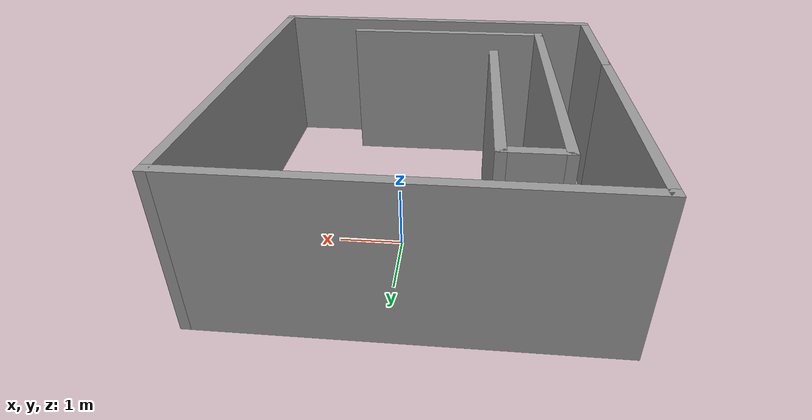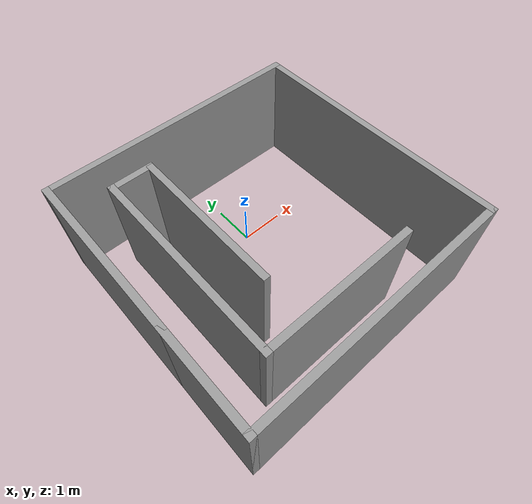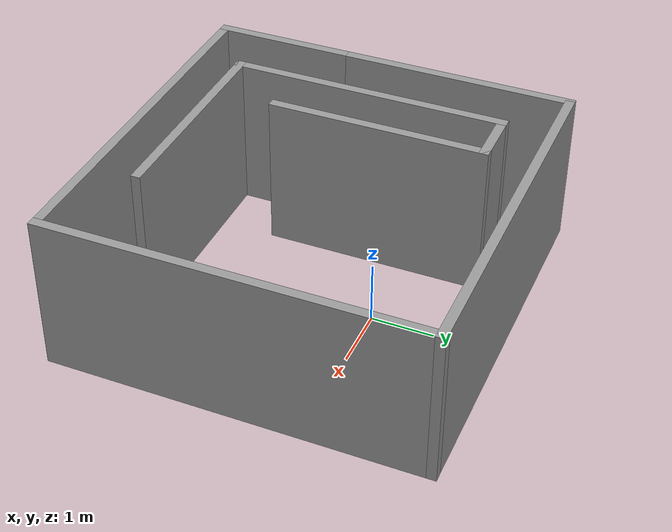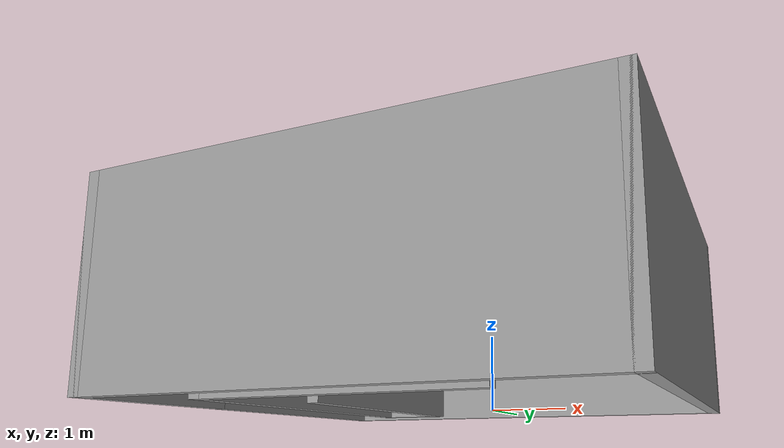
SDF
<?xml version='1.0'?>
<sdf version='1.7'>
  <model name='new_wall'>
    <pose>-0.257621 -0.981653 0 0 -0 0</pose>
    <link name='Wall_11'>
      <collision name='Wall_11_Collision'>
        <geometry>
          <box>
            <size>3.5 0.15 2.5</size>
          </box>
        </geometry>
        <pose>0 0 1.25 0 -0 0</pose>
      </collision>
      <visual name='Wall_11_Visual'>
        <pose>0 0 1.25 0 -0 0</pose>
        <geometry>
          <box>
            <size>3.5 0.15 2.5</size>
          </box>
        </geometry>
        <material>
          <script>
            <uri>file://media/materials/scripts/gazebo.material</uri>
            <name>Gazebo/Grey</name>
          </script>
          <ambient>1 1 1 1</ambient>
        </material>
        <meta>
          <layer>0</layer>
        </meta>
      </visual>
      <pose>-0.29406 -2.19559 0 0 -0 3.14159</pose>
    </link>
    <link name='Wall_12'>
      <collision name='Wall_12_Collision'>
        <geometry>
          <box>
            <size>4.5 0.15 2.5</size>
          </box>
        </geometry>
        <pose>0 0 1.25 0 -0 0</pose>
      </collision>
      <visual name='Wall_12_Visual'>
        <pose>0 0 1.25 0 -0 0</pose>
        <geometry>
          <box>
            <size>4.5 0.15 2.5</size>
          </box>
        </geometry>
        <material>
          <script>
            <uri>file://media/materials/scripts/gazebo.material</uri>
            <name>Gazebo/Grey</name>
          </script>
          <ambient>1 1 1 1</ambient>
        </material>
        <meta>
          <layer>0</layer>
        </meta>
      </visual>
      <pose>-1.96906 -0.020586 0 0 -0 1.5708</pose>
    </link>
    <link name='Wall_13'>
      <collision name='Wall_13_Collision'>
        <geometry>
          <box>
            <size>1 0.15 2.5</size>
          </box>
        </geometry>
        <pose>0 0 1.25 0 -0 0</pose>
      </collision>
      <visual name='Wall_13_Visual'>
        <pose>0 0 1.25 0 -0 0</pose>
        <geometry>
          <box>
            <size>1 0.15 2.5</size>
          </box>
        </geometry>
        <material>
          <script>
            <uri>file://media/materials/scripts/gazebo.material</uri>
            <name>Gazebo/Grey</name>
          </script>
          <ambient>1 1 1 1</ambient>
        </material>
        <meta>
          <layer>0</layer>
        </meta>
      </visual>
      <pose>-1.54406 2.15441 0 0 -0 0</pose>
    </link>
    <link name='Wall_14'>
      <collision name='Wall_14_Collision'>
        <geometry>
          <box>
            <size>3.5 0.15 2.5</size>
          </box>
        </geometry>
        <pose>0 0 1.25 0 -0 0</pose>
      </collision>
      <visual name='Wall_14_Visual'>
        <pose>0 0 1.25 0 -0 0</pose>
        <geometry>
          <box>
            <size>3.5 0.15 2.5</size>
          </box>
        </geometry>
        <material>
          <script>
            <uri>file://media/materials/scripts/gazebo.material</uri>
            <name>Gazebo/Grey</name>
          </script>
          <ambient>1 1 1 1</ambient>
        </material>
        <meta>
          <layer>0</layer>
        </meta>
      </visual>
      <pose>-1.11906 0.479414 0 0 -0 -1.5708</pose>
    </link>
    <link name='Wall_2'>
      <collision name='Wall_2_Collision'>
        <geometry>
          <box>
            <size>2.25 0.15 2.5</size>
          </box>
        </geometry>
        <pose>0 0 1.25 0 -0 0</pose>
      </collision>
      <visual name='Wall_2_Visual'>
        <pose>0 0 1.25 0 -0 0</pose>
        <geometry>
          <box>
            <size>2.25 0.15 2.5</size>
          </box>
        </geometry>
        <material>
          <script>
            <uri>file://media/materials/scripts/gazebo.material</uri>
            <name>Gazebo/Grey</name>
          </script>
          <ambient>1 1 1 1</ambient>
        </material>
        <meta>
          <layer>0</layer>
        </meta>
      </visual>
      <pose>-2.925 -1.875 0 0 -0 -1.5708</pose>
    </link>
    <link name='Wall_5'>
      <collision name='Wall_5_Collision'>
        <geometry>
          <box>
            <size>6 0.15 2.5</size>
          </box>
        </geometry>
        <pose>0 0 1.25 0 -0 0</pose>
      </collision>
      <visual name='Wall_5_Visual'>
        <pose>0 0 1.25 0 -0 0</pose>
        <geometry>
          <box>
            <size>6 0.15 2.5</size>
          </box>
        </geometry>
        <material>
          <script>
            <uri>file://media/materials/scripts/gazebo.material</uri>
            <name>Gazebo/Grey</name>
          </script>
          <ambient>1 1 1 1</ambient>
        </material>
        <meta>
          <layer>0</layer>
        </meta>
      </visual>
      <pose>0 -2.925 0 0 -0 0</pose>
    </link>
    <link name='Wall_7'>
      <collision name='Wall_7_Collision'>
        <geometry>
          <box>
            <size>6 0.15 2.5</size>
          </box>
        </geometry>
        <pose>0 0 1.25 0 -0 0</pose>
      </collision>
      <visual name='Wall_7_Visual'>
        <pose>0 0 1.25 0 -0 0</pose>
        <geometry>
          <box>
            <size>6 0.15 2.5</size>
          </box>
        </geometry>
        <material>
          <script>
            <uri>file://media/materials/scripts/gazebo.material</uri>
            <name>Gazebo/Grey</name>
          </script>
          <ambient>1 1 1 1</ambient>
        </material>
        <meta>
          <layer>0</layer>
        </meta>
      </visual>
      <pose>2.925 0 0 0 -0 1.5708</pose>
    </link>
    <link name='Wall_8'>
      <collision name='Wall_8_Collision'>
        <geometry>
          <box>
            <size>6 0.15 2.5</size>
          </box>
        </geometry>
        <pose>0 0 1.25 0 -0 0</pose>
      </collision>
      <visual name='Wall_8_Visual'>
        <pose>0 0 1.25 0 -0 0</pose>
        <geometry>
          <box>
            <size>6 0.15 2.5</size>
          </box>
        </geometry>
        <material>
          <script>
            <uri>file://media/materials/scripts/gazebo.material</uri>
            <name>Gazebo/Grey</name>
          </script>
          <ambient>1 1 1 1</ambient>
        </material>
        <meta>
          <layer>0</layer>
        </meta>
      </visual>
      <pose>0 2.925 0 0 -0 3.14159</pose>
    </link>
    <link name='Wall_9'>
      <collision name='Wall_9_Collision'>
        <geometry>
          <box>
            <size>3.9 0.15 2.5</size>
          </box>
        </geometry>
        <pose>0 0 1.25 0 -0 0</pose>
      </collision>
      <visual name='Wall_9_Visual'>
        <pose>0 0 1.25 0 -0 0</pose>
        <geometry>
          <box>
            <size>3.9 0.15 2.5</size>
          </box>
        </geometry>
        <material>
          <script>
            <uri>file://media/materials/scripts/gazebo.material</uri>
            <name>Gazebo/Grey</name>
          </script>
          <ambient>1 1 1 1</ambient>
        </material>
        <meta>
          <layer>0</layer>
        </meta>
      </visual>
      <pose>-2.925 1.05 0 0 -0 -1.5708</pose>
    </link>
    <static>1</static>
  </model>
</sdf>
